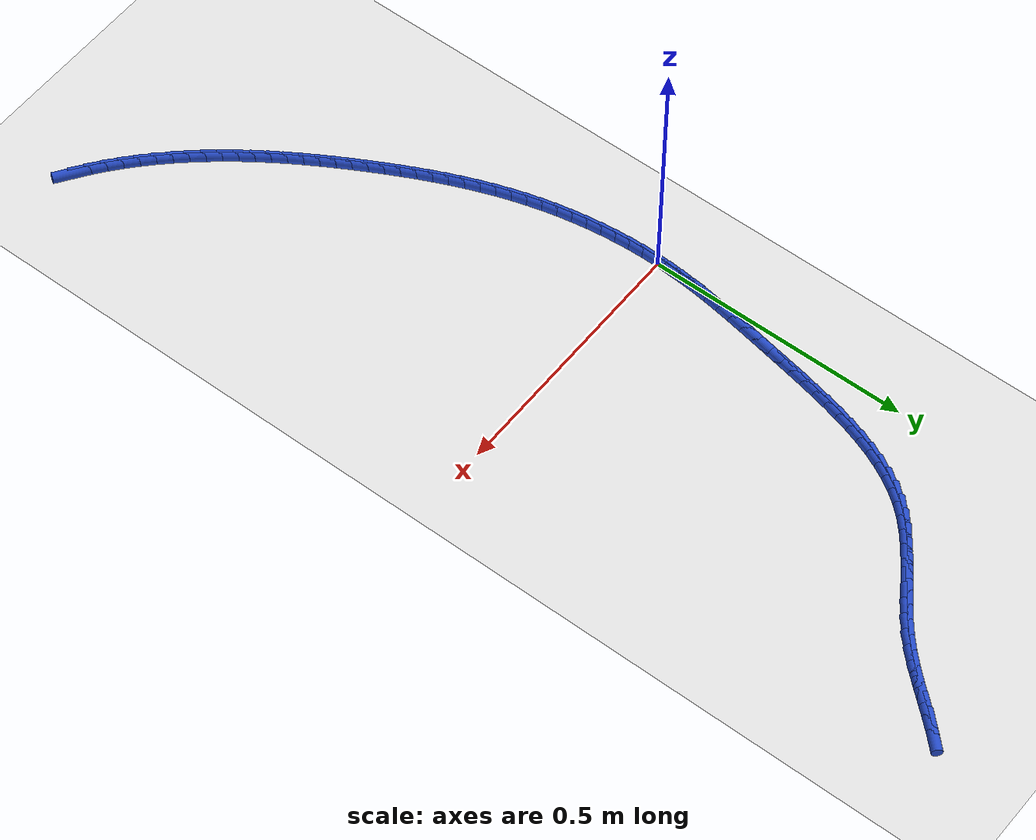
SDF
<sdf version="1.6">
 <world name="default">
  <model name="ground_plane">
   <static>1</static>
   <link name="link">
    <collision name="collision">
     <geometry><plane><normal>0 0 1</normal><size>100 100</size></plane></geometry>
     <surface><friction><ode><mu>100</mu><mu2>50</mu2></ode></friction></surface>
    </collision>
    <visual name="visual">
     <cast_shadows>0</cast_shadows>
     <geometry><plane><normal>0 0 1</normal><size>100 100</size></plane></geometry>
     <material>
      <script><uri>file://media/materials/scripts/gazebo.material</uri><name>Gazebo/WhiteGlow</name></script>
     </material>
    </visual>
   </link>
  </model>
  <model name="line">
   <link name="link_0">
    <pose>3.469446951953614e-18 1.3877787807814457e-17 0.01 0 1.57 1.5299129188031793</pose>
    <collision name="collision">
     <geometry><cylinder><radius>0.01</radius><length>0.08</length></cylinder></geometry>
    </collision>
    <visual name="visual">
     <material>
      <script><name>Gazebo/Blue</name><uri>file://media/materials/scripts/gazebo.material</uri></script>
     </material>
     <geometry><cylinder><radius>0.01</radius><length>0.08</length></cylinder></geometry>
    </visual>
   </link>
   <link name="link_1">
    <pose>0.0011530025170490552 0.02818649680976999 0.01 0 1.57 1.497769813567669</pose>
    <collision name="collision">
     <geometry><cylinder><radius>0.01</radius><length>0.08</length></cylinder></geometry>
    </collision>
    <visual name="visual">
     <material>
      <script><name>Gazebo/Blue</name><uri>file://media/materials/scripts/gazebo.material</uri></script>
     </material>
     <geometry><cylinder><radius>0.01</radius><length>0.08</length></cylinder></geometry>
    </visual>
   </link>
   <link name="link_2">
    <pose>0.0032068903203694775 0.056261717356643946 0.01 0 1.57 1.4693903626771059</pose>
    <collision name="collision">
     <geometry><cylinder><radius>0.01</radius><length>0.08</length></cylinder></geometry>
    </collision>
    <visual name="visual">
     <material>
      <script><name>Gazebo/Blue</name><uri>file://media/materials/scripts/gazebo.material</uri></script>
     </material>
     <geometry><cylinder><radius>0.01</radius><length>0.08</length></cylinder></geometry>
    </visual>
   </link>
   <link name="link_3">
    <pose>0.006057501423697899 0.08427617703042298 0.01 0 1.57 1.4449422129983254</pose>
    <collision name="collision">
     <geometry><cylinder><radius>0.01</radius><length>0.08</length></cylinder></geometry>
    </collision>
    <visual name="visual">
     <material>
      <script><name>Gazebo/Blue</name><uri>file://media/materials/scripts/gazebo.material</uri></script>
     </material>
     <geometry><cylinder><radius>0.01</radius><length>0.08</length></cylinder></geometry>
    </visual>
   </link>
   <link name="link_4">
    <pose>0.009600673840770941 0.11228039122090795 0.01 0 1.57 1.4245263946095714</pose>
    <collision name="collision">
     <geometry><cylinder><radius>0.01</radius><length>0.08</length></cylinder></geometry>
    </collision>
    <visual name="visual">
     <material>
      <script><name>Gazebo/Blue</name><uri>file://media/materials/scripts/gazebo.material</uri></script>
     </material>
     <geometry><cylinder><radius>0.01</radius><length>0.08</length></cylinder></geometry>
    </visual>
   </link>
   <link name="link_5">
    <pose>0.013732245585325232 0.14032487531789986 0.01 0 1.57 1.4081871204633614</pose>
    <collision name="collision">
     <geometry><cylinder><radius>0.01</radius><length>0.08</length></cylinder></geometry>
    </collision>
    <visual name="visual">
     <material>
      <script><name>Gazebo/Blue</name><uri>file://media/materials/scripts/gazebo.material</uri></script>
     </material>
     <geometry><cylinder><radius>0.01</radius><length>0.08</length></cylinder></geometry>
    </visual>
   </link>
   <link name="link_6">
    <pose>0.018348054671097402 0.1684601447111998 0.01 0 1.57 1.3959217323673576</pose>
    <collision name="collision">
     <geometry><cylinder><radius>0.01</radius><length>0.08</length></cylinder></geometry>
    </collision>
    <visual name="visual">
     <material>
      <script><name>Gazebo/Blue</name><uri>file://media/materials/scripts/gazebo.material</uri></script>
     </material>
     <geometry><cylinder><radius>0.01</radius><length>0.08</length></cylinder></geometry>
    </visual>
   </link>
   <link name="link_7">
    <pose>0.023343939111824065 0.19673671479060856 0.01 0 1.57 1.3876897735565916</pose>
    <collision name="collision">
     <geometry><cylinder><radius>0.01</radius><length>0.08</length></cylinder></geometry>
    </collision>
    <visual name="visual">
     <material>
      <script><name>Gazebo/Blue</name><uri>file://media/materials/scripts/gazebo.material</uri></script>
     </material>
     <geometry><cylinder><radius>0.01</radius><length>0.08</length></cylinder></geometry>
    </visual>
   </link>
   <link name="link_8">
    <pose>0.028615736921241853 0.22520510094592724 0.01 0 1.57 1.3834205681677068</pose>
    <collision name="collision">
     <geometry><cylinder><radius>0.01</radius><length>0.08</length></cylinder></geometry>
    </collision>
    <visual name="visual">
     <material>
      <script><name>Gazebo/Blue</name><uri>file://media/materials/scripts/gazebo.material</uri></script>
     </material>
     <geometry><cylinder><radius>0.01</radius><length>0.08</length></cylinder></geometry>
    </visual>
   </link>
   <link name="link_9">
    <pose>0.034059286113087395 0.25391581856695683 0.01 0 1.57 1.382868552914791</pose>
    <collision name="collision">
     <geometry><cylinder><radius>0.01</radius><length>0.08</length></cylinder></geometry>
    </collision>
    <visual name="visual">
     <material>
      <script><name>Gazebo/Blue</name><uri>file://media/materials/scripts/gazebo.material</uri></script>
     </material>
     <geometry><cylinder><radius>0.01</radius><length>0.08</length></cylinder></geometry>
    </visual>
   </link>
   <link name="link_10">
    <pose>0.03957434939670133 0.2829162420170616 0.01 0 1.57 1.3815614575415698</pose>
    <collision name="collision">
     <geometry><cylinder><radius>0.01</radius><length>0.08</length></cylinder></geometry>
    </collision>
    <visual name="visual">
     <material>
      <script><name>Gazebo/Blue</name><uri>file://media/materials/scripts/gazebo.material</uri></script>
     </material>
     <geometry><cylinder><radius>0.01</radius><length>0.08</length></cylinder></geometry>
    </visual>
   </link>
   <link name="link_11">
    <pose>0.045175639563653745 0.3121617483982633 0.01 0 1.57 1.37456282095957</pose>
    <collision name="collision">
     <geometry><cylinder><radius>0.01</radius><length>0.08</length></cylinder></geometry>
    </collision>
    <visual name="visual">
     <material>
      <script><name>Gazebo/Blue</name><uri>file://media/materials/scripts/gazebo.material</uri></script>
     </material>
     <geometry><cylinder><radius>0.01</radius><length>0.08</length></cylinder></geometry>
    </visual>
   </link>
   <link name="link_12">
    <pose>0.051008475458380484 0.3415031877087713 0.01 0 1.57 1.3615995437440158</pose>
    <collision name="collision">
     <geometry><cylinder><radius>0.01</radius><length>0.08</length></cylinder></geometry>
    </collision>
    <visual name="visual">
     <material>
      <script><name>Gazebo/Blue</name><uri>file://media/materials/scripts/gazebo.material</uri></script>
     </material>
     <geometry><cylinder><radius>0.01</radius><length>0.08</length></cylinder></geometry>
    </visual>
   </link>
   <link name="link_13">
    <pose>0.05722524782726675 0.3707857501369087 0.01 0 1.57 1.3425315483709672</pose>
    <collision name="collision">
     <geometry><cylinder><radius>0.01</radius><length>0.08</length></cylinder></geometry>
    </collision>
    <visual name="visual">
     <material>
      <script><name>Gazebo/Blue</name><uri>file://media/materials/scripts/gazebo.material</uri></script>
     </material>
     <geometry><cylinder><radius>0.01</radius><length>0.08</length></cylinder></geometry>
    </visual>
   </link>
   <link name="link_14">
    <pose>0.06397834741669772 0.39985462587099874 0.01 0 1.57 1.3170902846725199</pose>
    <collision name="collision">
     <geometry><cylinder><radius>0.01</radius><length>0.08</length></cylinder></geometry>
    </collision>
    <visual name="visual">
     <material>
      <script><name>Gazebo/Blue</name><uri>file://media/materials/scripts/gazebo.material</uri></script>
     </material>
     <geometry><cylinder><radius>0.01</radius><length>0.08</length></cylinder></geometry>
    </visual>
   </link>
   <link name="link_15">
    <pose>0.07142016497305857 0.42855500509936445 0.01 0 1.57 1.2848901855311876</pose>
    <collision name="collision">
     <geometry><cylinder><radius>0.01</radius><length>0.08</length></cylinder></geometry>
    </collision>
    <visual name="visual">
     <material>
      <script><name>Gazebo/Blue</name><uri>file://media/materials/scripts/gazebo.material</uri></script>
     </material>
     <geometry><cylinder><radius>0.01</radius><length>0.08</length></cylinder></geometry>
    </visual>
   </link>
   <link name="link_16">
    <pose>0.07970309124273453 0.4567320780103295 0.01 0 1.57 1.2454464794236753</pose>
    <collision name="collision">
     <geometry><cylinder><radius>0.01</radius><length>0.08</length></cylinder></geometry>
    </collision>
    <visual name="visual">
     <material>
      <script><name>Gazebo/Blue</name><uri>file://media/materials/scripts/gazebo.material</uri></script>
     </material>
     <geometry><cylinder><radius>0.01</radius><length>0.08</length></cylinder></geometry>
    </visual>
   </link>
   <link name="link_17">
    <pose>0.0889795169721107 0.48423103479221624 0.01 0 1.57 1.1982060074406884</pose>
    <collision name="collision">
     <geometry><cylinder><radius>0.01</radius><length>0.08</length></cylinder></geometry>
    </collision>
    <visual name="visual">
     <material>
      <script><name>Gazebo/Blue</name><uri>file://media/materials/scripts/gazebo.material</uri></script>
     </material>
     <geometry><cylinder><radius>0.01</radius><length>0.08</length></cylinder></geometry>
    </visual>
   </link>
   <link name="link_18">
    <pose>0.09940183290757239 0.5108970656333486 0.01 0 1.57 1.1425999506336486</pose>
    <collision name="collision">
     <geometry><cylinder><radius>0.01</radius><length>0.08</length></cylinder></geometry>
    </collision>
    <visual name="visual">
     <material>
      <script><name>Gazebo/Blue</name><uri>file://media/materials/scripts/gazebo.material</uri></script>
     </material>
     <geometry><cylinder><radius>0.01</radius><length>0.08</length></cylinder></geometry>
    </visual>
   </link>
   <link name="link_19">
    <pose>0.11112242979550464 0.536575360722049 0.01 0 1.57 1.0781287932297328</pose>
    <collision name="collision">
     <geometry><cylinder><radius>0.01</radius><length>0.08</length></cylinder></geometry>
    </collision>
    <visual name="visual">
     <material>
      <script><name>Gazebo/Blue</name><uri>file://media/materials/scripts/gazebo.material</uri></script>
     </material>
     <geometry><cylinder><radius>0.01</radius><length>0.08</length></cylinder></geometry>
    </visual>
   </link>
   <link name="link_20">
    <pose>0.12429369838229275 0.5611111102466413 0.01 0 1.57 1.00448799987924</pose>
    <collision name="collision">
     <geometry><cylinder><radius>0.01</radius><length>0.08</length></cylinder></geometry>
    </collision>
    <visual name="visual">
     <material>
      <script><name>Gazebo/Blue</name><uri>file://media/materials/scripts/gazebo.material</uri></script>
     </material>
     <geometry><cylinder><radius>0.01</radius><length>0.08</length></cylinder></geometry>
    </visual>
   </link>
   <link name="link_21">
    <pose>0.1390680294143219 0.5843495043954485 0.01 0 1.57 0.9217337579621993</pose>
    <collision name="collision">
     <geometry><cylinder><radius>0.01</radius><length>0.08</length></cylinder></geometry>
    </collision>
    <visual name="visual">
     <material>
      <script><name>Gazebo/Blue</name><uri>file://media/materials/scripts/gazebo.material</uri></script>
     </material>
     <geometry><cylinder><radius>0.01</radius><length>0.08</length></cylinder></geometry>
    </visual>
   </link>
   <link name="link_22">
    <pose>0.1555978136379772 0.6061357333567934 0.01 0 1.57 0.8310435819316709</pose>
    <collision name="collision">
     <geometry><cylinder><radius>0.01</radius><length>0.08</length></cylinder></geometry>
    </collision>
    <visual name="visual">
     <material>
      <script><name>Gazebo/Blue</name><uri>file://media/materials/scripts/gazebo.material</uri></script>
     </material>
     <geometry><cylinder><radius>0.01</radius><length>0.08</length></cylinder></geometry>
    </visual>
   </link>
   <link name="link_23">
    <pose>0.17402436940957766 0.6263262047059167 0.01 0 1.57 0.7464101622358386</pose>
    <collision name="collision">
     <geometry><cylinder><radius>0.01</radius><length>0.08</length></cylinder></geometry>
    </collision>
    <visual name="visual">
     <material>
      <script><name>Gazebo/Blue</name><uri>file://media/materials/scripts/gazebo.material</uri></script>
     </material>
     <geometry><cylinder><radius>0.01</radius><length>0.08</length></cylinder></geometry>
    </visual>
   </link>
   <link name="link_24">
    <pose>0.1942429356074061 0.6450266279935991 0.01 0 1.57 0.6811563899036511</pose>
    <collision name="collision">
     <geometry><cylinder><radius>0.01</radius><length>0.08</length></cylinder></geometry>
    </collision>
    <visual name="visual">
     <material>
      <script><name>Gazebo/Blue</name><uri>file://media/materials/scripts/gazebo.material</uri></script>
     </material>
     <geometry><cylinder><radius>0.01</radius><length>0.08</length></cylinder></geometry>
    </visual>
   </link>
   <link name="link_25">
    <pose>0.21590734890573032 0.662587276221589 0.01 0 1.57 0.6354635268026902</pose>
    <collision name="collision">
     <geometry><cylinder><radius>0.01</radius><length>0.08</length></cylinder></geometry>
    </collision>
    <visual name="visual">
     <material>
      <script><name>Gazebo/Blue</name><uri>file://media/materials/scripts/gazebo.material</uri></script>
     </material>
     <geometry><cylinder><radius>0.01</radius><length>0.08</length></cylinder></geometry>
    </visual>
   </link>
   <link name="link_26">
    <pose>0.2386613091515491 0.679368691964231 0.01 0 1.57 0.6084845085814978</pose>
    <collision name="collision">
     <geometry><cylinder><radius>0.01</radius><length>0.08</length></cylinder></geometry>
    </collision>
    <visual name="visual">
     <material>
      <script><name>Gazebo/Blue</name><uri>file://media/materials/scripts/gazebo.material</uri></script>
     </material>
     <geometry><cylinder><radius>0.01</radius><length>0.08</length></cylinder></geometry>
    </visual>
   </link>
   <link name="link_27">
    <pose>0.262148516191861 0.6957314177958686 0.01 0 1.57 0.5993784056537174</pose>
    <collision name="collision">
     <geometry><cylinder><radius>0.01</radius><length>0.08</length></cylinder></geometry>
    </collision>
    <visual name="visual">
     <material>
      <script><name>Gazebo/Blue</name><uri>file://media/materials/scripts/gazebo.material</uri></script>
     </material>
     <geometry><cylinder><radius>0.01</radius><length>0.08</length></cylinder></geometry>
    </visual>
   </link>
   <link name="link_28">
    <pose>0.28601266987366486 0.712035996290846 0.01 0 1.57 0.6075610244165411</pose>
    <collision name="collision">
     <geometry><cylinder><radius>0.01</radius><length>0.08</length></cylinder></geometry>
    </collision>
    <visual name="visual">
     <material>
      <script><name>Gazebo/Blue</name><uri>file://media/materials/scripts/gazebo.material</uri></script>
     </material>
     <geometry><cylinder><radius>0.01</radius><length>0.08</length></cylinder></geometry>
    </visual>
   </link>
   <link name="link_29">
    <pose>0.3098974700439591 0.7286429700235072 0.01 0 1.57 0.6327636757870426</pose>
    <collision name="collision">
     <geometry><cylinder><radius>0.01</radius><length>0.08</length></cylinder></geometry>
    </collision>
    <visual name="visual">
     <material>
      <script><name>Gazebo/Blue</name><uri>file://media/materials/scripts/gazebo.material</uri></script>
     </material>
     <geometry><cylinder><radius>0.01</radius><length>0.08</length></cylinder></geometry>
    </visual>
   </link>
   <link name="link_30">
    <pose>0.3334466165497426 0.745912881568196 0.01 0 1.57 0.674944660335149</pose>
    <collision name="collision">
     <geometry><cylinder><radius>0.01</radius><length>0.08</length></cylinder></geometry>
    </collision>
    <visual name="visual">
     <material>
      <script><name>Gazebo/Blue</name><uri>file://media/materials/scripts/gazebo.material</uri></script>
     </material>
     <geometry><cylinder><radius>0.01</radius><length>0.08</length></cylinder></geometry>
    </visual>
   </link>
   <link name="link_31">
    <pose>0.35630380923801414 0.7642062734992568 0.01 0 1.57 0.7331527381415547</pose>
    <collision name="collision">
     <geometry><cylinder><radius>0.01</radius><length>0.08</length></cylinder></geometry>
    </collision>
    <visual name="visual">
     <material>
      <script><name>Gazebo/Blue</name><uri>file://media/materials/scripts/gazebo.material</uri></script>
     </material>
     <geometry><cylinder><radius>0.01</radius><length>0.08</length></cylinder></geometry>
    </visual>
   </link>
   <link name="link_32">
    <pose>0.3781293280893622 0.7838625825707028 0.01 0 1.57 0.7894097712730372</pose>
    <collision name="collision">
     <geometry><cylinder><radius>0.01</radius><length>0.08</length></cylinder></geometry>
    </collision>
    <visual name="visual">
     <material>
      <script><name>Gazebo/Blue</name><uri>file://media/materials/scripts/gazebo.material</uri></script>
     </material>
     <geometry><cylinder><radius>0.01</radius><length>0.08</length></cylinder></geometry>
    </visual>
   </link>
   <link name="link_33">
    <pose>0.39890776860618427 0.8048084053687371 0.01 0 1.57 0.8278243296899235</pose>
    <collision name="collision">
     <geometry><cylinder><radius>0.01</radius><length>0.08</length></cylinder></geometry>
    </collision>
    <visual name="visual">
     <material>
      <script><name>Gazebo/Blue</name><uri>file://media/materials/scripts/gazebo.material</uri></script>
     </material>
     <geometry><cylinder><radius>0.01</radius><length>0.08</length></cylinder></geometry>
    </visual>
   </link>
   <link name="link_34">
    <pose>0.4189192064748526 0.8265942044972698 0.01 0 1.57 0.8483203543843909</pose>
    <collision name="collision">
     <geometry><cylinder><radius>0.01</radius><length>0.08</length></cylinder></geometry>
    </collision>
    <visual name="visual">
     <material>
      <script><name>Gazebo/Blue</name><uri>file://media/materials/scripts/gazebo.material</uri></script>
     </material>
     <geometry><cylinder><radius>0.01</radius><length>0.08</length></cylinder></geometry>
    </visual>
   </link>
   <link name="link_35">
    <pose>0.43845451476832803 0.8487566979362532 0.01 0 1.57 0.8511040692108328</pose>
    <collision name="collision">
     <geometry><cylinder><radius>0.01</radius><length>0.08</length></cylinder></geometry>
    </collision>
    <visual name="visual">
     <material>
      <script><name>Gazebo/Blue</name><uri>file://media/materials/scripts/gazebo.material</uri></script>
     </material>
     <geometry><cylinder><radius>0.01</radius><length>0.08</length></cylinder></geometry>
    </visual>
   </link>
   <link name="link_36">
    <pose>0.45780456655957136 0.8708326036656392 0.01 0 1.57 0.8358745657494786</pose>
    <collision name="collision">
     <geometry><cylinder><radius>0.01</radius><length>0.08</length></cylinder></geometry>
    </collision>
    <visual name="visual">
     <material>
      <script><name>Gazebo/Blue</name><uri>file://media/materials/scripts/gazebo.material</uri></script>
     </material>
     <geometry><cylinder><radius>0.01</radius><length>0.08</length></cylinder></geometry>
    </visual>
   </link>
   <link name="link_37">
    <pose>0.47726023492154324 0.8923586396653801 0.01 0 1.57 0.801765475457663</pose>
    <collision name="collision">
     <geometry><cylinder><radius>0.01</radius><length>0.08</length></cylinder></geometry>
    </collision>
    <visual name="visual">
     <material>
      <script><name>Gazebo/Blue</name><uri>file://media/materials/scripts/gazebo.material</uri></script>
     </material>
     <geometry><cylinder><radius>0.01</radius><length>0.08</length></cylinder></geometry>
    </visual>
   </link>
   <link name="link_193">
    <pose>0.4710246960989277 -0.9114151273398198 0.01 0 1.57 -0.6076672414310056</pose>
    <collision name="collision">
     <geometry><cylinder><radius>0.01</radius><length>0.08</length></cylinder></geometry>
    </collision>
    <visual name="visual">
     <material>
      <script><name>Gazebo/Blue</name><uri>file://media/materials/scripts/gazebo.material</uri></script>
     </material>
     <geometry><cylinder><radius>0.01</radius><length>0.08</length></cylinder></geometry>
    </visual>
   </link>
   <link name="link_194">
    <pose>0.4473474754105665 -0.8949487515095326 0.01 0 1.57 -0.6532366445042129</pose>
    <collision name="collision">
     <geometry><cylinder><radius>0.01</radius><length>0.08</length></cylinder></geometry>
    </collision>
    <visual name="visual">
     <material>
      <script><name>Gazebo/Blue</name><uri>file://media/materials/scripts/gazebo.material</uri></script>
     </material>
     <geometry><cylinder><radius>0.01</radius><length>0.08</length></cylinder></geometry>
    </visual>
   </link>
   <link name="link_195">
    <pose>0.42434500859375646 -0.8773444081380356 0.01 0 1.57 -0.6951197147747208</pose>
    <collision name="collision">
     <geometry><cylinder><radius>0.01</radius><length>0.08</length></cylinder></geometry>
    </collision>
    <visual name="visual">
     <material>
      <script><name>Gazebo/Blue</name><uri>file://media/materials/scripts/gazebo.material</uri></script>
     </material>
     <geometry><cylinder><radius>0.01</radius><length>0.08</length></cylinder></geometry>
    </visual>
   </link>
   <link name="link_196">
    <pose>0.40203256635213086 -0.8587362805616386 0.01 0 1.57 -0.7336147565831159</pose>
    <collision name="collision">
     <geometry><cylinder><radius>0.01</radius><length>0.08</length></cylinder></geometry>
    </collision>
    <visual name="visual">
     <material>
      <script><name>Gazebo/Blue</name><uri>file://media/materials/scripts/gazebo.material</uri></script>
     </material>
     <geometry><cylinder><radius>0.01</radius><length>0.08</length></cylinder></geometry>
    </visual>
   </link>
   <link name="link_197">
    <pose>0.3804254193893225 -0.8392585521166502 0.01 0 1.57 -0.7690142408149737</pose>
    <collision name="collision">
     <geometry><cylinder><radius>0.01</radius><length>0.08</length></cylinder></geometry>
    </collision>
    <visual name="visual">
     <material>
      <script><name>Gazebo/Blue</name><uri>file://media/materials/scripts/gazebo.material</uri></script>
     </material>
     <geometry><cylinder><radius>0.01</radius><length>0.08</length></cylinder></geometry>
    </visual>
   </link>
   <link name="link_198">
    <pose>0.359538838408966 -0.8190454061393813 0.01 0 1.57 -0.8016045779392318</pose>
    <collision name="collision">
     <geometry><cylinder><radius>0.01</radius><length>0.08</length></cylinder></geometry>
    </collision>
    <visual name="visual">
     <material>
      <script><name>Gazebo/Blue</name><uri>file://media/materials/scripts/gazebo.material</uri></script>
     </material>
     <geometry><cylinder><radius>0.01</radius><length>0.08</length></cylinder></geometry>
    </visual>
   </link>
   <link name="link_199">
    <pose>0.33938777208686427 -0.7982303680151825 0.01 0 1.57 -0.832070292777699</pose>
    <collision name="collision">
     <geometry><cylinder><radius>0.01</radius><length>0.08</length></cylinder></geometry>
    </collision>
    <visual name="visual">
     <material>
      <script><name>Gazebo/Blue</name><uri>file://media/materials/scripts/gazebo.material</uri></script>
     </material>
     <geometry><cylinder><radius>0.01</radius><length>0.08</length></cylinder></geometry>
    </visual>
   </link>
   <link name="link_200">
    <pose>0.31996787165736607 -0.7769075355740415 0.01 0 1.57 -0.8611313168430381</pose>
    <collision name="collision">
     <geometry><cylinder><radius>0.01</radius><length>0.08</length></cylinder></geometry>
    </collision>
    <visual name="visual">
     <material>
      <script><name>Gazebo/Blue</name><uri>file://media/materials/scripts/gazebo.material</uri></script>
     </material>
     <geometry><cylinder><radius>0.01</radius><length>0.08</length></cylinder></geometry>
    </visual>
   </link>
   <link name="link_201">
    <pose>0.30124489124355447 -0.755109922381877 0.01 0 1.57 -0.8887746400503298</pose>
    <collision name="collision">
     <geometry><cylinder><radius>0.01</radius><length>0.08</length></cylinder></geometry>
    </collision>
    <visual name="visual">
     <material>
      <script><name>Gazebo/Blue</name><uri>file://media/materials/scripts/gazebo.material</uri></script>
     </material>
     <geometry><cylinder><radius>0.01</radius><length>0.08</length></cylinder></geometry>
    </visual>
   </link>
   <link name="link_202">
    <pose>0.28318201480058625 -0.7328652907676261 0.01 0 1.57 -0.9149391453790318</pose>
    <collision name="collision">
     <geometry><cylinder><radius>0.01</radius><length>0.08</length></cylinder></geometry>
    </collision>
    <visual name="visual">
     <material>
      <script><name>Gazebo/Blue</name><uri>file://media/materials/scripts/gazebo.material</uri></script>
     </material>
     <geometry><cylinder><radius>0.01</radius><length>0.08</length></cylinder></geometry>
    </visual>
   </link>
   <link name="link_203">
    <pose>0.2657424262836166 -0.710201403060223 0.01 0 1.57 -0.9395769026891808</pose>
    <collision name="collision">
     <geometry><cylinder><radius>0.01</radius><length>0.08</length></cylinder></geometry>
    </collision>
    <visual name="visual">
     <material>
      <script><name>Gazebo/Blue</name><uri>file://media/materials/scripts/gazebo.material</uri></script>
     </material>
     <geometry><cylinder><radius>0.01</radius><length>0.08</length></cylinder></geometry>
    </visual>
   </link>
   <link name="link_204">
    <pose>0.248889309647801 -0.6871460215886033 0.01 0 1.57 -0.9626518746581859</pose>
    <collision name="collision">
     <geometry><cylinder><radius>0.01</radius><length>0.08</length></cylinder></geometry>
    </collision>
    <visual name="visual">
     <material>
      <script><name>Gazebo/Blue</name><uri>file://media/materials/scripts/gazebo.material</uri></script>
     </material>
     <geometry><cylinder><radius>0.01</radius><length>0.08</length></cylinder></geometry>
    </visual>
   </link>
   <link name="link_205">
    <pose>0.23258584884829522 -0.6637269086817024 0.01 0 1.57 -0.9841384548140003</pose>
    <collision name="collision">
     <geometry><cylinder><radius>0.01</radius><length>0.08</length></cylinder></geometry>
    </collision>
    <visual name="visual">
     <material>
      <script><name>Gazebo/Blue</name><uri>file://media/materials/scripts/gazebo.material</uri></script>
     </material>
     <geometry><cylinder><radius>0.01</radius><length>0.08</length></cylinder></geometry>
    </visual>
   </link>
   <link name="link_206">
    <pose>0.2167952278402546 -0.6399718266684548 0.01 0 1.57 -1.0040199234190286</pose>
    <collision name="collision">
     <geometry><cylinder><radius>0.01</radius><length>0.08</length></cylinder></geometry>
    </collision>
    <visual name="visual">
     <material>
      <script><name>Gazebo/Blue</name><uri>file://media/materials/scripts/gazebo.material</uri></script>
     </material>
     <geometry><cylinder><radius>0.01</radius><length>0.08</length></cylinder></geometry>
    </visual>
   </link>
   <link name="link_207">
    <pose>0.20148063057883564 -0.6159085378777971 0.01 0 1.57 -1.0222868926030566</pose>
    <collision name="collision">
     <geometry><cylinder><radius>0.01</radius><length>0.08</length></cylinder></geometry>
    </collision>
    <visual name="visual">
     <material>
      <script><name>Gazebo/Blue</name><uri>file://media/materials/scripts/gazebo.material</uri></script>
     </material>
     <geometry><cylinder><radius>0.01</radius><length>0.08</length></cylinder></geometry>
    </visual>
   </link>
   <link name="link_208">
    <pose>0.18660524101919343 -0.5915648046386638 0.01 0 1.57 -1.0389357966053223</pose>
    <collision name="collision">
     <geometry><cylinder><radius>0.01</radius><length>0.08</length></cylinder></geometry>
    </collision>
    <visual name="visual">
     <material>
      <script><name>Gazebo/Blue</name><uri>file://media/materials/scripts/gazebo.material</uri></script>
     </material>
     <geometry><cylinder><radius>0.01</radius><length>0.08</length></cylinder></geometry>
    </visual>
   </link>
   <link name="link_209">
    <pose>0.17213224311648384 -0.5669683892799906 0.01 0 1.57 -1.0539674679299547</pose>
    <collision name="collision">
     <geometry><cylinder><radius>0.01</radius><length>0.08</length></cylinder></geometry>
    </collision>
    <visual name="visual">
     <material>
      <script><name>Gazebo/Blue</name><uri>file://media/materials/scripts/gazebo.material</uri></script>
     </material>
     <geometry><cylinder><radius>0.01</radius><length>0.08</length></cylinder></geometry>
    </visual>
   </link>
   <link name="link_210">
    <pose>0.1580248208258621 -0.5421470541307121 0.01 0 1.57 -1.0673863964239034</pose>
    <collision name="collision">
     <geometry><cylinder><radius>0.01</radius><length>0.08</length></cylinder></geometry>
    </collision>
    <visual name="visual">
     <material>
      <script><name>Gazebo/Blue</name><uri>file://media/materials/scripts/gazebo.material</uri></script>
     </material>
     <geometry><cylinder><radius>0.01</radius><length>0.08</length></cylinder></geometry>
    </visual>
   </link>
   <link name="link_211">
    <pose>0.14424617290170963 -0.5171285546636838 0.01 0 1.57 -1.0800016173679985</pose>
    <collision name="collision">
     <geometry><cylinder><radius>0.01</radius><length>0.08</length></cylinder></geometry>
    </collision>
    <visual name="visual">
     <material>
      <script><name>Gazebo/Blue</name><uri>file://media/materials/scripts/gazebo.material</uri></script>
     </material>
     <geometry><cylinder><radius>0.01</radius><length>0.08</length></cylinder></geometry>
    </visual>
   </link>
   <link name="link_212">
    <pose>0.13078035466329327 -0.4919309840686812 0.01 0 1.57 -1.0942241166847095</pose>
    <collision name="collision">
     <geometry><cylinder><radius>0.01</radius><length>0.08</length></cylinder></geometry>
    </collision>
    <visual name="visual">
     <material>
      <script><name>Gazebo/Blue</name><uri>file://media/materials/scripts/gazebo.material</uri></script>
     </material>
     <geometry><cylinder><radius>0.01</radius><length>0.08</length></cylinder></geometry>
    </visual>
   </link>
   <link name="link_213">
    <pose>0.11767378955156738 -0.46654354206955984 0.01 0 1.57 -1.1105134815187132</pose>
    <collision name="collision">
     <geometry><cylinder><radius>0.01</radius><length>0.08</length></cylinder></geometry>
    </collision>
    <visual name="visual">
     <material>
      <script><name>Gazebo/Blue</name><uri>file://media/materials/scripts/gazebo.material</uri></script>
     </material>
     <geometry><cylinder><radius>0.01</radius><length>0.08</length></cylinder></geometry>
    </visual>
   </link>
   <link name="link_214">
    <pose>0.10498450863425031 -0.4409500508902727 0.01 0 1.57 -1.1288819715069143</pose>
    <collision name="collision">
     <geometry><cylinder><radius>0.01</radius><length>0.08</length></cylinder></geometry>
    </collision>
    <visual name="visual">
     <material>
      <script><name>Gazebo/Blue</name><uri>file://media/materials/scripts/gazebo.material</uri></script>
     </material>
     <geometry><cylinder><radius>0.01</radius><length>0.08</length></cylinder></geometry>
    </visual>
   </link>
   <link name="link_215">
    <pose>0.09277054297905996 -0.4151343327547715 0.01 0 1.57 -1.1493392507346896</pose>
    <collision name="collision">
     <geometry><cylinder><radius>0.01</radius><length>0.08</length></cylinder></geometry>
    </collision>
    <visual name="visual">
     <material>
      <script><name>Gazebo/Blue</name><uri>file://media/materials/scripts/gazebo.material</uri></script>
     </material>
     <geometry><cylinder><radius>0.01</radius><length>0.08</length></cylinder></geometry>
    </visual>
   </link>
   <link name="link_216">
    <pose>0.08108992365371524 -0.38908020988701003 0.01 0 1.57 -1.1718899845256545</pose>
    <collision name="collision">
     <geometry><cylinder><radius>0.01</radius><length>0.08</length></cylinder></geometry>
    </collision>
    <visual name="visual">
     <material>
      <script><name>Gazebo/Blue</name><uri>file://media/materials/scripts/gazebo.material</uri></script>
     </material>
     <geometry><cylinder><radius>0.01</radius><length>0.08</length></cylinder></geometry>
    </visual>
   </link>
   <link name="link_217">
    <pose>0.07000068172593413 -0.3627715045109403 0.01 0 1.57 -1.1965311403442498</pose>
    <collision name="collision">
     <geometry><cylinder><radius>0.01</radius><length>0.08</length></cylinder></geometry>
    </collision>
    <visual name="visual">
     <material>
      <script><name>Gazebo/Blue</name><uri>file://media/materials/scripts/gazebo.material</uri></script>
     </material>
     <geometry><cylinder><radius>0.01</radius><length>0.08</length></cylinder></geometry>
    </visual>
   </link>
   <link name="link_218">
    <pose>0.059560848263434864 -0.336192038850515 0.01 0 1.57 -1.2232490313798514</pose>
    <collision name="collision">
     <geometry><cylinder><radius>0.01</radius><length>0.08</length></cylinder></geometry>
    </collision>
    <visual name="visual">
     <material>
      <script><name>Gazebo/Blue</name><uri>file://media/materials/scripts/gazebo.material</uri></script>
     </material>
     <geometry><cylinder><radius>0.01</radius><length>0.08</length></cylinder></geometry>
    </visual>
   </link>
   <link name="link_219">
    <pose>0.049828454333935505 -0.30932563512968597 0.01 0 1.57 -1.2520161769164073</pose>
    <collision name="collision">
     <geometry><cylinder><radius>0.01</radius><length>0.08</length></cylinder></geometry>
    </collision>
    <visual name="visual">
     <material>
      <script><name>Gazebo/Blue</name><uri>file://media/materials/scripts/gazebo.material</uri></script>
     </material>
     <geometry><cylinder><radius>0.01</radius><length>0.08</length></cylinder></geometry>
    </visual>
   </link>
   <link name="link_220">
    <pose>0.040861531005154814 -0.2821561155724071 0.01 0 1.57 -1.2827312105003994</pose>
    <collision name="collision">
     <geometry><cylinder><radius>0.01</radius><length>0.08</length></cylinder></geometry>
    </collision>
    <visual name="visual">
     <material>
      <script><name>Gazebo/Blue</name><uri>file://media/materials/scripts/gazebo.material</uri></script>
     </material>
     <geometry><cylinder><radius>0.01</radius><length>0.08</length></cylinder></geometry>
    </visual>
   </link>
   <link name="link_221">
    <pose>0.03271695821909452 -0.25466915817238267 0.01 0 1.57 -1.314317479153231</pose>
    <collision name="collision">
     <geometry><cylinder><radius>0.01</radius><length>0.08</length></cylinder></geometry>
    </collision>
    <visual name="visual">
     <material>
      <script><name>Gazebo/Blue</name><uri>file://media/materials/scripts/gazebo.material</uri></script>
     </material>
     <geometry><cylinder><radius>0.01</radius><length>0.08</length></cylinder></geometry>
    </visual>
   </link>
   <link name="link_222">
    <pose>0.025430356575187895 -0.22688471384792872 0.01 0 1.57 -1.34593434221719</pose>
    <collision name="collision">
     <geometry><cylinder><radius>0.01</radius><length>0.08</length></cylinder></geometry>
    </collision>
    <visual name="visual">
     <material>
      <script><name>Gazebo/Blue</name><uri>file://media/materials/scripts/gazebo.material</uri></script>
     </material>
     <geometry><cylinder><radius>0.01</radius><length>0.08</length></cylinder></geometry>
    </visual>
   </link>
   <link name="link_223">
    <pose>0.01901863572400467 -0.19885289808795986 0.01 0 1.57 -1.3776636093171841</pose>
    <collision name="collision">
     <geometry><cylinder><radius>0.01</radius><length>0.08</length></cylinder></geometry>
    </collision>
    <visual name="visual">
     <material>
      <script><name>Gazebo/Blue</name><uri>file://media/materials/scripts/gazebo.material</uri></script>
     </material>
     <geometry><cylinder><radius>0.01</radius><length>0.08</length></cylinder></geometry>
    </visual>
   </link>
   <link name="link_224">
    <pose>0.013498066475521554 -0.17062485627850385 0.01 0 1.57 -1.4096180831173404</pose>
    <collision name="collision">
     <geometry><cylinder><radius>0.01</radius><length>0.08</length></cylinder></geometry>
    </collision>
    <visual name="visual">
     <material>
      <script><name>Gazebo/Blue</name><uri>file://media/materials/scripts/gazebo.material</uri></script>
     </material>
     <geometry><cylinder><radius>0.01</radius><length>0.08</length></cylinder></geometry>
    </visual>
   </link>
   <link name="link_225">
    <pose>0.008884919639714777 -0.1422517338055863 0.01 0 1.57 -1.441910448242608</pose>
    <collision name="collision">
     <geometry><cylinder><radius>0.01</radius><length>0.08</length></cylinder></geometry>
    </collision>
    <visual name="visual">
     <material>
      <script><name>Gazebo/Blue</name><uri>file://media/materials/scripts/gazebo.material</uri></script>
     </material>
     <geometry><cylinder><radius>0.01</radius><length>0.08</length></cylinder></geometry>
    </visual>
   </link>
   <link name="link_226">
    <pose>0.005195466026560748 -0.11378467605523374 0.01 0 1.57 -1.4746536593730954</pose>
    <collision name="collision">
     <geometry><cylinder><radius>0.01</radius><length>0.08</length></cylinder></geometry>
    </collision>
    <visual name="visual">
     <material>
      <script><name>Gazebo/Blue</name><uri>file://media/materials/scripts/gazebo.material</uri></script>
     </material>
     <geometry><cylinder><radius>0.01</radius><length>0.08</length></cylinder></geometry>
    </visual>
   </link>
   <link name="link_227">
    <pose>0.002445976446035853 -0.08527482841347248 0.01 0 1.57 -1.5079612290795725</pose>
    <collision name="collision">
     <geometry><cylinder><radius>0.01</radius><length>0.08</length></cylinder></geometry>
    </collision>
    <visual name="visual">
     <material>
      <script><name>Gazebo/Blue</name><uri>file://media/materials/scripts/gazebo.material</uri></script>
     </material>
     <geometry><cylinder><radius>0.01</radius><length>0.08</length></cylinder></geometry>
    </visual>
   </link>
   <link name="link_228">
    <pose>0.0006527217081164628 -0.0567733362663282 0.01 0 1.57 -1.5419473839627114</pose>
    <collision name="collision">
     <geometry><cylinder><radius>0.01</radius><length>0.08</length></cylinder></geometry>
    </collision>
    <visual name="visual">
     <material>
      <script><name>Gazebo/Blue</name><uri>file://media/materials/scripts/gazebo.material</uri></script>
     </material>
     <geometry><cylinder><radius>0.01</radius><length>0.08</length></cylinder></geometry>
    </visual>
   </link>
   <link name="link_229">
    <pose>-0.0001680273772209336 -0.028331344999828825 0.01 0 1.57 1.5648656021088425</pose>
    <collision name="collision">
     <geometry><cylinder><radius>0.01</radius><length>0.08</length></cylinder></geometry>
    </collision>
    <visual name="visual">
     <material>
      <script><name>Gazebo/Blue</name><uri>file://media/materials/scripts/gazebo.material</uri></script>
     </material>
     <geometry><cylinder><radius>0.01</radius><length>0.08</length></cylinder></geometry>
    </visual>
   </link>
   <link name="link_230">
    <pose>6.938893903907228e-18 3.469446951953614e-17 0.01 0 1.57 1.5291770211269744</pose>
    <collision name="collision">
     <geometry><cylinder><radius>0.01</radius><length>0.08</length></cylinder></geometry>
    </collision>
    <visual name="visual">
     <material>
      <script><name>Gazebo/Blue</name><uri>file://media/materials/scripts/gazebo.material</uri></script>
     </material>
     <geometry><cylinder><radius>0.01</radius><length>0.08</length></cylinder></geometry>
    </visual>
   </link>
   <link name="link_231">
    <pose>0.0011730746497556795 0.028169553347131948 0.01 0 1.57 1.4924641474836706</pose>
    <collision name="collision">
     <geometry><cylinder><radius>0.01</radius><length>0.08</length></cylinder></geometry>
    </collision>
    <visual name="visual">
     <material>
      <script><name>Gazebo/Blue</name><uri>file://media/materials/scripts/gazebo.material</uri></script>
     </material>
     <geometry><cylinder><radius>0.01</radius><length>0.08</length></cylinder></geometry>
    </visual>
   </link>
   <link name="link_232">
    <pose>0.0033674673820224856 0.056126169655540514 0.01 0 1.57 1.5108699966437331</pose>
    <collision name="collision">
     <geometry><cylinder><radius>0.01</radius><length>0.08</length></cylinder></geometry>
    </collision>
    <visual name="visual">
     <material>
      <script><name>Gazebo/Blue</name><uri>file://media/materials/scripts/gazebo.material</uri></script>
     </material>
     <geometry><cylinder><radius>0.01</radius><length>0.08</length></cylinder></geometry>
    </visual>
   </link>
  </model>
 </world>
</sdf>
